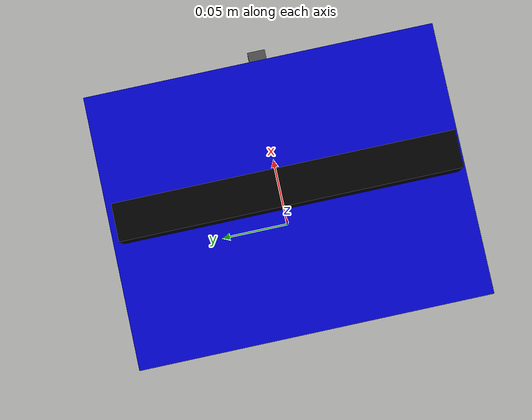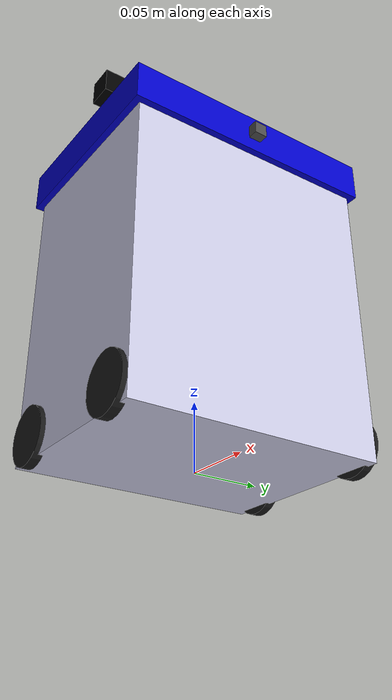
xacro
<?xml version="1.0" ?>
<robot name="clumsybot" xmlns:xacro="http://www.ros.org/wiki/xacro">

  <xacro:property name="PI" value="3.14159"/>

  <xacro:property name="base_len" value="0.145"/>
  <xacro:property name="base_width" value="0.19"/>
  <xacro:property name="base_height" value="0.23"/>

  <xacro:property name="hat_protuding" value="0.01"/>
  <xacro:property name="hat_height" value="0.03"/>

  <xacro:property name="wheel_radius" value="0.021"/>
  <xacro:property name="wheel_width" value="0.007"/>
  <xacro:property name="wheel_clearance" value="0.005"/>

  <xacro:include filename="materials.xacro" />
  <xacro:include filename="clumsybot.gazebo" />

  <link name="base_link">
    <visual>
      <geometry>
        <box size="${base_len} ${base_width} ${base_height}"/>
      </geometry>
      <origin xyz="0 0 ${base_height/2}" rpy="0 0 0" />
      <material name="metalic"/>
    </visual>
    <collision>
      <origin xyz="0 0 ${(base_height + hat_height)/2}" rpy="0 0 0" />
      <geometry>
        <box size="${base_len} ${base_width + 2*hat_protuding} ${base_height + hat_height}"/>
      </geometry>
    </collision>
    <inertial>
      <origin xyz="0 0 ${base_height/2}" />
      <mass value="2"/>
      <inertia
        ixx="1.0e-3" ixy="0.0" ixz="0.0"
        iyy="1.0e-3" iyz="0.0"
        izz="1.0e-3"/>
    </inertial>
  </link>

  <link name="base_footprint"/>
  <joint name="base_joint" type="fixed">
    <parent link="base_footprint"/>
    <child link="base_link"/>
    <origin xyz="0.0 0.0 ${wheel_clearance}" rpy="0 0 0"/>
  </joint>

  <link name="hat_link">
    <visual>
      <geometry>
        <box size="${base_len+hat_protuding} ${base_width+hat_protuding} ${hat_height}"/>
      </geometry>
      <material name="blue"/>
    </visual>
    <inertial>
      <mass value="0.5"/>
      <inertia
        ixx="0" ixy="0.0" ixz="0.0"
        iyy="0" iyz="0.0"
        izz="0"/>
    </inertial>
  </link>
  <joint name="base_to_hat" type="fixed">
    <parent link="base_link"/>
    <child link="hat_link"/>
    <origin xyz="0 0 ${base_height}" />
  </joint>

  <link name="left_front_wheel">
    <visual>
      <geometry>
        <cylinder length="${wheel_width}" radius="${wheel_radius}"/>
      </geometry>
      <material name="wheel_color"/>
      <origin rpy="${PI/2} 0 0" />
    </visual>
    <collision>
      <geometry>
        <cylinder length="${wheel_width}" radius="${wheel_radius}"/>
      </geometry>
      <origin rpy="${PI/2} 0 0" />
    </collision>
    <inertial>
      <mass value="0.01"/>
      <inertia
        ixx="1.0e-5" ixy="0.0" ixz="0.0"
        iyy="1.0e-5" iyz="0.0"
        izz="1.0e-5"/>
    </inertial>
  </link>
  <joint name="left_front_wheel_joint" type="continuous">
    <axis xyz="0 1 0"/>
    <parent link="base_link"/>
    <child link="left_front_wheel"/>
    <origin xyz="${-base_len/2 + wheel_radius} ${base_width/2} ${wheel_radius - wheel_clearance}"/>
  </joint>

  <link name="left_back_wheel">
    <visual>
      <geometry>
        <cylinder length="${wheel_width}" radius="${wheel_radius}"/>
      </geometry>
      <material name="wheel_color"/>
      <origin rpy="${PI/2} 0 0" />
    </visual>
    <collision>
      <geometry>
        <cylinder length="${wheel_width}" radius="${wheel_radius}"/>
      </geometry>
      <origin rpy="${PI/2} 0 0" />
    </collision>
    <inertial>
      <mass value="0.01"/>
      <inertia
        ixx="1.0e-5" ixy="0.0" ixz="0.0"
        iyy="1.0e-5" iyz="0.0"
        izz="1.0e-5"/>
    </inertial>
  </link>
  <joint name="left_back_wheel_joint" type="continuous">
    <mimic joint="left_front_wheel_joint" offset="0" multiplier="1" />
    <axis xyz="0 1 0"/>
    <parent link="base_link"/>
    <child link="left_back_wheel"/>
    <origin xyz="${base_len/2 - wheel_radius} ${base_width/2} ${wheel_radius - wheel_clearance}"/>
  </joint>

  <link name="right_front_wheel">
    <visual>
      <geometry>
        <cylinder length="${wheel_width}" radius="${wheel_radius}"/>
      </geometry>
      <material name="wheel_color"/>
      <origin rpy="${PI/2} 0 0" />
    </visual>
    <collision>
      <geometry>
        <cylinder length="${wheel_width}" radius="${wheel_radius}"/>
      </geometry>
      <origin rpy="${PI/2} 0 0" />
    </collision>
    <inertial>
      <mass value="0.01"/>
      <inertia
        ixx="1.0e-5" ixy="0.0" ixz="0.0"
        iyy="1.0e-5" iyz="0.0"
        izz="1.0e-5"/>
    </inertial>
  </link>
  <joint name="right_front_wheel_joint" type="continuous">
    <axis xyz="0 1 0"/>
    <parent link="base_link"/>
    <child link="right_front_wheel"/>
    <origin xyz="${-base_len/2 + wheel_radius} ${-base_width/2} ${wheel_radius - wheel_clearance}"/>
  </joint>

  <link name="right_back_wheel">
    <visual>
      <geometry>
        <cylinder length="${wheel_width}" radius="${wheel_radius}"/>
      </geometry>
      <origin rpy="${PI/2} 0 0" />
      <material name="wheel_color"/>
    </visual>
    <collision>
      <geometry>
        <cylinder length="${wheel_width}" radius="${wheel_radius}"/>
      </geometry>
      <origin rpy="${PI/2} 0 0" />
    </collision>
    <inertial>
      <mass value="0.01"/>
      <inertia
        ixx="1.0e-5" ixy="0.0" ixz="0.0"
        iyy="1.0e-5" iyz="0.0"
        izz="1.0e-5"/>
    </inertial>
  </link>
  <joint name="right_back_wheel_joint" type="continuous">
    <mimic joint="right_front_wheel_joint" offset="0" multiplier="1" />
    <axis xyz="0 1 0"/>
    <parent link="base_link"/>
    <child link="right_back_wheel"/>
    <origin xyz="${base_len/2 - wheel_radius} ${-base_width/2} ${wheel_radius - wheel_clearance}"/>
  </joint>

  <xacro:include filename="sensor/kinect/kinect.urdf.xacro"/>
  <xacro:kinect_cam name="camera"/>

  <joint name="kinect_to_hat_joint" type="fixed">
    <parent link="hat_link"/>
    <child link="camera_link"/>
    <origin xyz="0 0 ${hat_height+0.03}" />
  </joint>

  <link name="kinect_rgb_optical_frame"/>
  <joint name="rgb_kinect_joint" type="fixed">
    <origin rpy="${PI/2} ${PI} ${PI/2}"/>
    <parent link="camera_link"/>
    <child link="kinect_rgb_optical_frame"/>
  </joint>

  <xacro:include filename="sensor/proximity_sensor.urdf.xacro"/>
  <xacro:proximity_sensor group="proximity" range_max="2.5" name="proxsense" xyz="0.08 0 0" rpy="0 0 0"/>

</robot>

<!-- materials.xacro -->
<robot>
  <material name="black">
    <color rgba="0.0 0.0 0.0 1.0"/>
  </material>

  <material name="blue">
    <color rgba="0.0 0.0 0.8 1.0"/>
  </material>

  <material name="green">
    <color rgba="0.0 0.8 0.0 1.0"/>
  </material>

  <material name="grey">
    <color rgba="0.2 0.2 0.2 1.0"/>
  </material>

  <material name="orange">
    <color rgba="${255/255} ${108/255} ${10/255} 1.0"/>
  </material>

  <material name="brown">
    <color rgba="${222/255} ${207/255} ${195/255} 1.0"/>
  </material>

  <material name="red">
    <color rgba="0.8 0.0 0.0 1.0"/>
  </material>

  <material name="white">
    <color rgba="1.0 1.0 1.0 1.0"/>
  </material>

  <material name="metalic">
    <color rgba="0.8 0.8 0.9 1"/>
  </material>
  <material name="wheel_color">
    <color rgba="0.1 0.1 0.1 1"/>
  </material>
</robot>

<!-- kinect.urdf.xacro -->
<robot xmlns:xacro="http://ros.org/wiki/xacro">

  <xacro:macro name="kinect_cam" params="name">
    <link name="${name}_link">
      <visual>
		    <material name="black"/>
        <geometry>
          <box size="0.02 0.18 0.02"/>
        </geometry>
      </visual>
      <collision>
		    <origin xyz="0 0 0.041"/>
        <geometry>
		      <box size="0.065 0.25 0.082"/>
        </geometry>
      </collision>
      <inertial>
        <mass value="0.935"/>
        <inertia ixx="0.0053937" ixy="0" ixz="0"
				 iyy="0.00085311" iyz="0"
				 izz="0.00519899" />
      </inertial>

      <mu1>0.2</mu1>
      <mu2>0.2</mu2>
      <material>Gazebo/Black</material>

      <sensor type="depth" name="openni_depth_camera">
        <always_on>1</always_on>
        <visualize>true</visualize>
        <camera>
            <horizontal_fov>1.047</horizontal_fov>
            <image>
                <width>640</width>
                <height>480</height>
                <format>R8G8B8</format>
            </image>
            <depth_camera>

            </depth_camera>
            <clip>
                <near>0.1</near>
                <far>100</far>
            </clip>
        </camera>
        <plugin name="camera_controller" filename="libgazebo_ros_openni_kinect.so">
          <alwaysOn>true</alwaysOn>
          <updateRate>10.0</updateRate>
          <cameraName>camera</cameraName>
          <frameName>kinect_rgb_optical_frame</frameName>
          <imageTopicName>/image_raw</imageTopicName>
          <depthImageTopicName>depth/image_raw</depthImageTopicName>
          <pointCloudTopicName>depth/points</pointCloudTopicName>
          <cameraInfoTopicName>/camera_info</cameraInfoTopicName>
          <depthImageCameraInfoTopicName>depth/camera_info</depthImageCameraInfoTopicName>
          <pointCloudCutoff>0.4</pointCloudCutoff>
          <hackBaseline>0.07</hackBaseline>
          <distortionK1>0.0</distortionK1>
          <distortionK2>0.0</distortionK2>
          <distortionK3>0.0</distortionK3>
          <distortionT1>0.0</distortionT1>
          <distortionT2>0.0</distortionT2>
          <CxPrime>0.0</CxPrime>
          <Cx>0.0</Cx>
          <Cy>0.0</Cy>
          <focalLength>0.0</focalLength>
        </plugin>
      </sensor>
    </link>
  </xacro:macro>
</robot>

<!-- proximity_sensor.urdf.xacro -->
<robot xmlns:xacro="http://playerstage.sourceforge.net/gazebo/xmlschema/#xacro">

  <xacro:macro name="proximity_sensor" params="group name xyz rpy tf_prefix='' update_rate:=10 range_min:=0.00 range_max:=0.12 resolution:=0.005 fov:=1.001">
    <link name="proximity_sensor_link">
      <collision>
        <geometry>
          <box size="0.01 0.01 0.01"/>
        </geometry>
        <origin xyz="-0.01 0 0" />
      </collision>

      <visual>
        <geometry>
          <box size="0.01 0.01 0.01"/>
        </geometry>
      </visual>

      <inertial>
        <mass value="0.114" />
        <origin xyz="0 0 0" />
        <inertia ixx="0.001" ixy="0.0" ixz="0.0" iyy="0.001" iyz="0.0" izz="0.001" />
      </inertial>
    </link>

    <joint name="proximity_sensor_joint" type="fixed">
      <origin xyz="${xyz}" rpy="${rpy}"/>
      <parent link="hat_link"/>
      <child link="proximity_sensor_link"/>
    </joint>

    <gazebo reference="proximity_sensor_link">
      <sensor name="proximity_sensor" type="ray">
        <frame name="proximity_sensor_link"/>
        <visualize>true</visualize>
        <update_rate>${update_rate}</update_rate>
        <always_on>true</always_on>
        <ray>
          <scan>
            <horizontal>
              <samples>1</samples>
              <resolution>1</resolution>
              <min_angle>-${fov / 2}</min_angle>
              <max_angle>${fov / 2}</max_angle>
            </horizontal>
            <vertical>
              <samples>1</samples>
              <resolution>1</resolution>
              <min_angle>-${fov / 2}</min_angle>
              <max_angle>${fov / 2}</max_angle>
            </vertical>
          </scan>
          <range>
            <min>${range_min}</min>
            <max>${range_max}</max>
            <resolution>${resolution}</resolution>
          </range>
          <noise>
            <type>gaussian</type>
            <mean>0.0</mean>
            <stddev>${resolution / 2}</stddev>
          </noise>
        </ray>

        <plugin name="proximity_sensor_controller" filename="libgazebo_ros_ray_sensor.so">
          <radiation_type>infrared</radiation_type>
          <ros>
            <argument>~/out:=scan</argument>
          </ros>
          <output_type>sensor_msgs/LaserScan</output_type>
        </plugin>

        <plugin name="proximity_sensor_controller_pc2" filename="libgazebo_ros_ray_sensor.so">
          <ros>
            <remapping>~/out:=pointcloud2</remapping>
          </ros>
          <output_type>sensor_msgs/PointCloud2</output_type>
        </plugin>

        <plugin name="proximity_sensor_controller_range" filename="libgazebo_ros_ray_sensor.so">
          <ros>
            <remapping>~/out:=range</remapping>
          </ros>
        </plugin>
      </sensor>
      <material>Gazebo/DarkGrey</material>
    </gazebo>
  </xacro:macro>

</robot>
